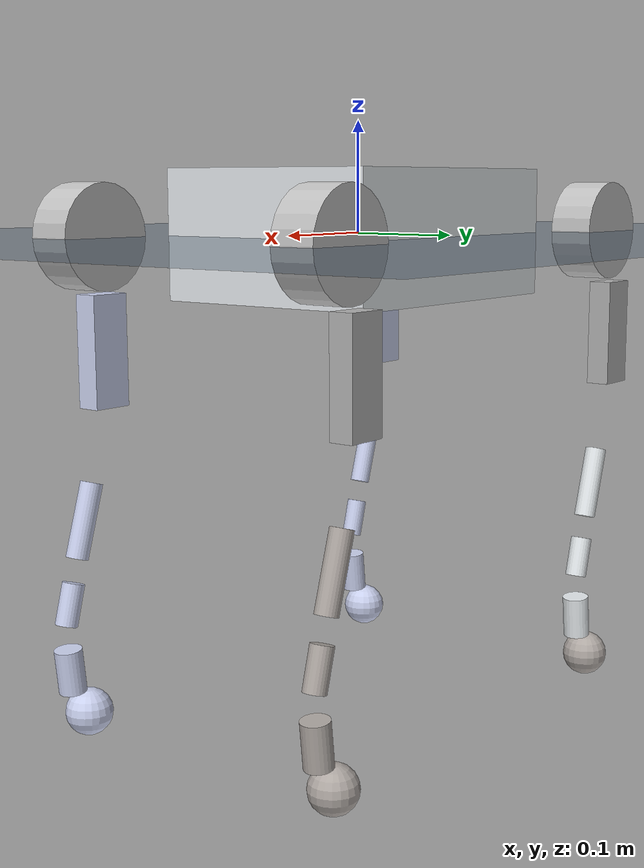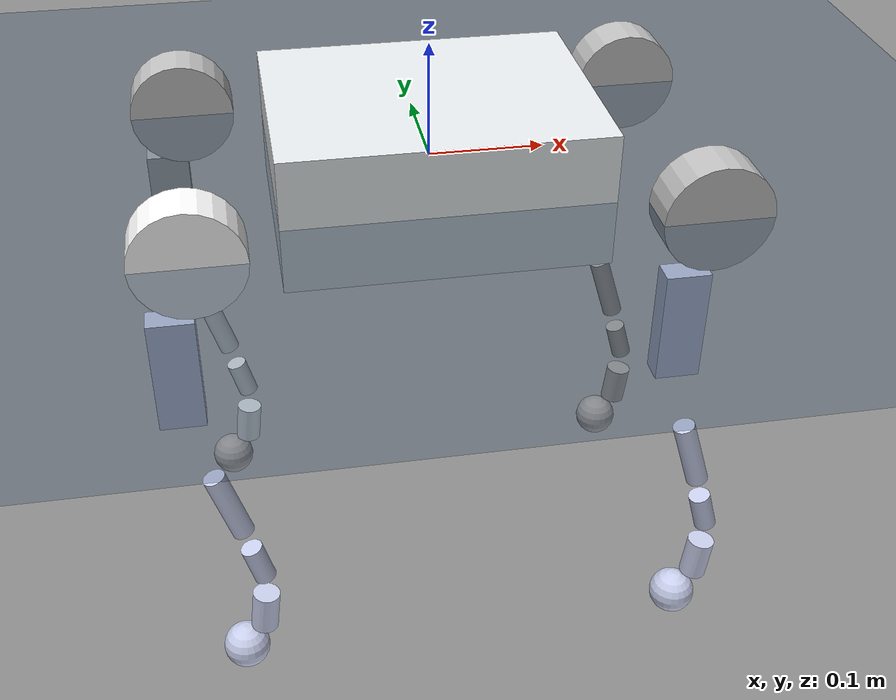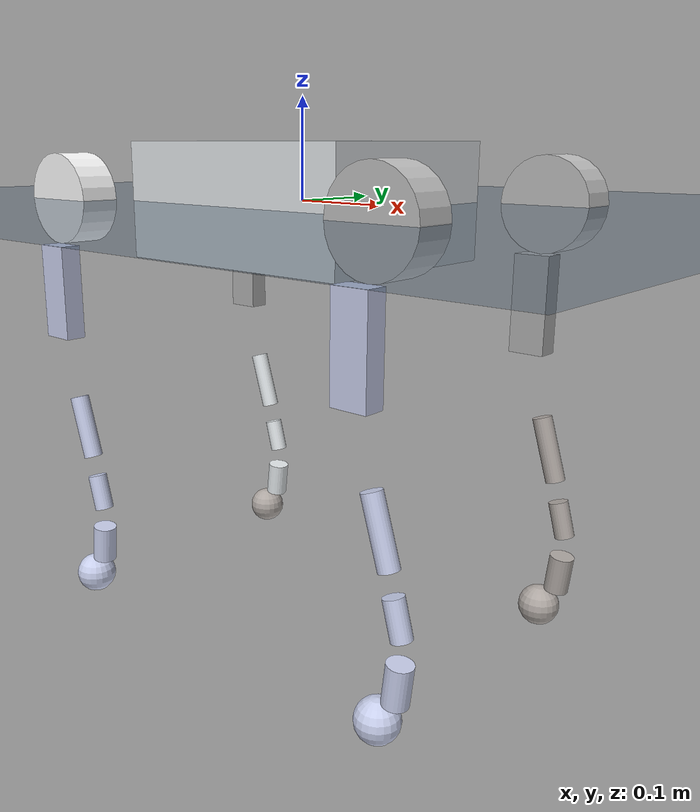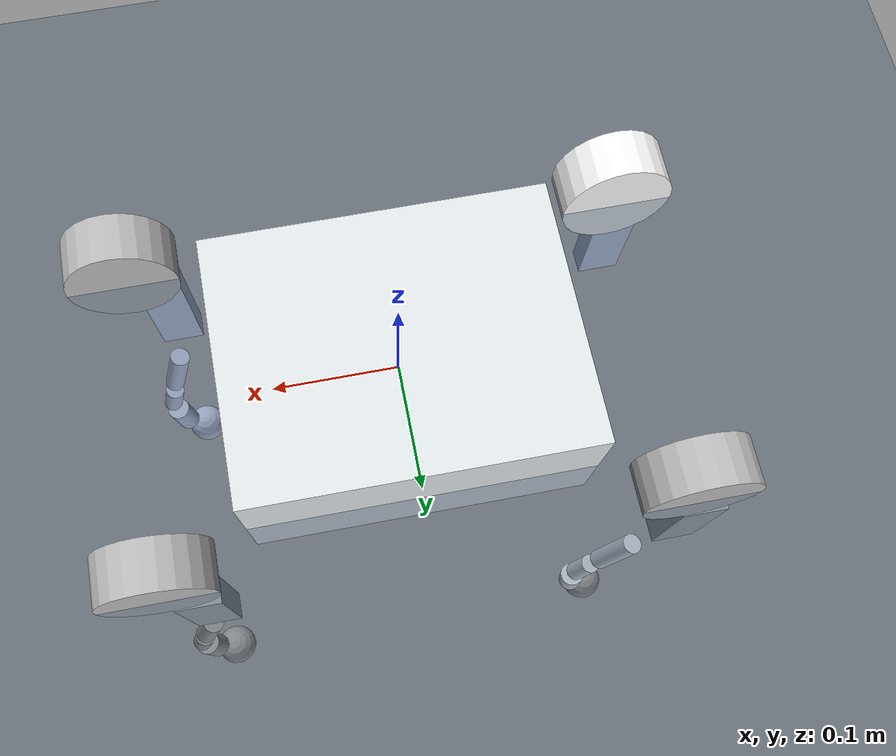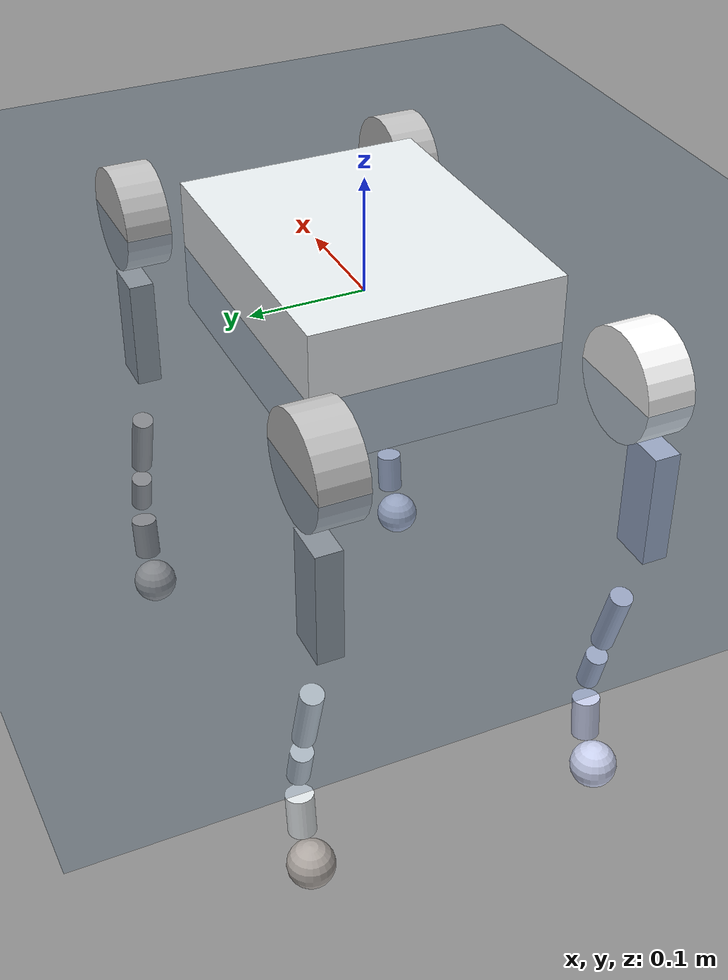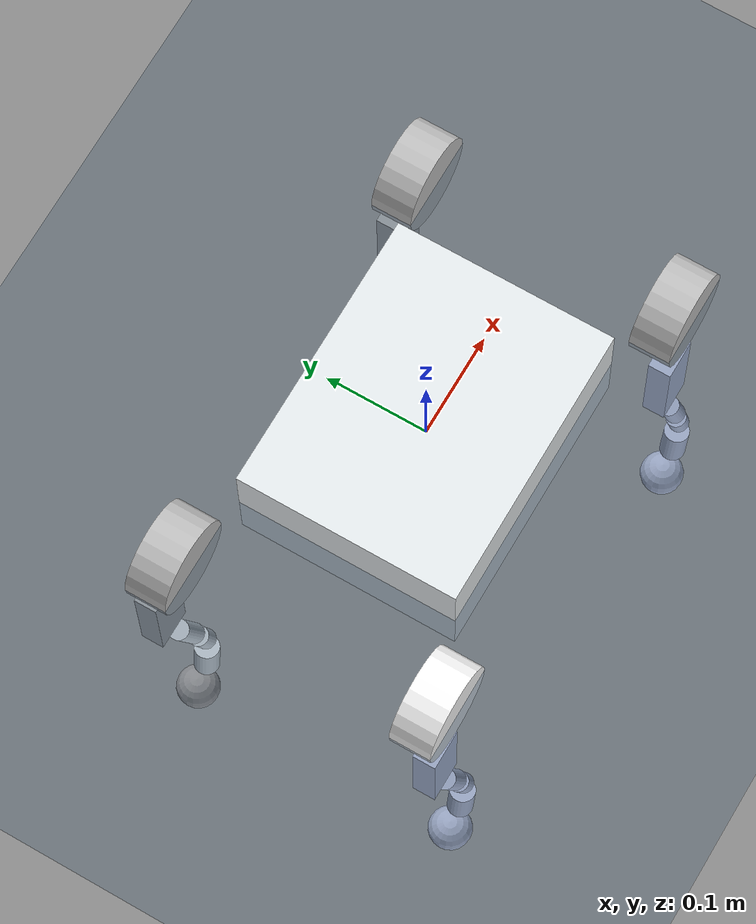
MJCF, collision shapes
<mujoco model="zof_deploy_from_urdf">
  <compiler angle="radian" meshdir="../meshes/"/>

  <visual>
    <headlight diffuse="0.6 0.6 0.6" ambient="0.3 0.3 0.3" specular="0 0 0"/>
  </visual>

  <asset>
    <texture type="2d" name="groundplane" builtin="checker" mark="edge"
             rgb1="0.2 0.3 0.4" rgb2="0.1 0.2 0.3" markrgb="0.8 0.8 0.8" width="300" height="300"/>
    <material name="groundplane" texture="groundplane" texuniform="true" texrepeat="5 5" reflectance="0.2"/>
    <mesh name="base" file="../meshes/base.STL"/>
    <mesh name="FL_hip" file="../meshes/FL_hip.STL"/>
    <mesh name="FL_thigh" file="../meshes/FL_thigh.STL"/>
    <mesh name="FL_calf" file="../meshes/FL_calf.STL"/>
    <mesh name="FL_foot" file="../meshes/FL_foot.STL"/>
    <mesh name="FR_hip" file="../meshes/FR_hip.STL"/>
    <mesh name="FR_thigh" file="../meshes/FR_thigh.STL"/>
    <mesh name="FR_calf" file="../meshes/FR_calf.STL"/>
    <mesh name="FR_foot" file="../meshes/FR_foot.STL"/>
    <mesh name="RL_hip" file="../meshes/RL_hip.STL"/>
    <mesh name="RL_thigh" file="../meshes/RL_thigh.STL"/>
    <mesh name="RL_calf" file="../meshes/RL_calf.STL"/>
    <mesh name="RL_foot" file="../meshes/RL_foot.STL"/>
    <mesh name="RR_hip" file="../meshes/RR_hip.STL"/>
    <mesh name="RR_thigh" file="../meshes/RR_thigh.STL"/>
    <mesh name="RR_calf" file="../meshes/RR_calf.STL"/>
    <mesh name="RR_foot" file="../meshes/RR_foot.STL"/>
  </asset>

  <worldbody>
    <light pos="0 0 3" dir="0 0 -1" directional="true"/>
    <geom name="floor" type="plane" size="0 0 0.05" material="groundplane" friction="0.6 0.02 0.001"/>
    <body name="base">
      <inertial pos="0.00757956 -0.0002 -0.00254703" quat="-0.000168829 0.709518 -8.20306e-06 0.704687" mass="4.87475" diaginertia="0.0616585 0.051515 0.0183903"/>
      <joint name="float_base" type="free" limited="false" actuatorfrclimited="false"/>
      <geom type="mesh" contype="0" conaffinity="0" group="1" density="0" rgba="0.898039 0.917647 0.929412 1" mesh="base"/>
      <geom size="0.136 0.107 0.058" type="box" rgba="0.898039 0.917647 0.929412 1"/>
      <site name="imu" pos="0 0 0" size="0.01"/>
      <body name="FL_hip" pos="0.1403 0.0498 0">
        <inertial pos="0.0595071 0.00087962 -8.074e-05" quat="0.496919 0.496369 0.504125 0.502541" mass="0.644204" diaginertia="0.00317449 0.00285293 0.000438798"/>
        <joint name="FL_hip_joint" pos="0 0 0" axis="1 0 0" range="-1.0036 1.0036" actuatorfrcrange="-23.7 23.7"/>
        <geom type="mesh" contype="0" conaffinity="0" group="1" density="0" rgba="0.752941 0.752941 0.752941 1" mesh="FL_hip"/>
        <geom size="0.046 0.02" pos="0.06676 0.08 0" quat="0.707107 0.707107 0 0" type="cylinder" rgba="0.752941 0.752941 0.752941 1"/>
        <body name="FL_thigh" pos="0.0667563 0.0201539 0">
          <inertial pos="-0.00211808 0.0470524 -0.0217645" quat="0.950167 0.309807 0.0346802 0.000206141" mass="0.958557" diaginertia="0.00590221 0.00493252 0.00188799"/>
          <joint name="FL_thigh_joint" pos="0 0 0" axis="0 1 0" range="-0.56723 4.9306" actuatorfrcrange="-23.7 23.7"/>
          <geom type="mesh" contype="0" conaffinity="0" group="1" density="0" rgba="0.698039 0.698039 0.698039 1" mesh="FL_thigh"/>
          <geom size="0.05 0.011 0.019" pos="-0.019 0.0691 -0.1" quat="0.707107 0 0.707107 0" type="box" rgba="0.698039 0.698039 0.698039 1"/>
          <body name="FL_calf" pos="0 0.0694 -0.22">
            <inertial pos="0.0102562 0 -0.142332" quat="0.706652 -0.0253595 -0.0253595 0.706652" mass="0.185505" diaginertia="0.00353873 0.00348961 7.08641e-05"/>
            <joint name="FL_calf_joint" pos="0 0 0" axis="0 1 0" range="-2.618 -0.69813" actuatorfrcrange="-35.55 35.55"/>
            <geom type="mesh" contype="0" conaffinity="0" group="1" density="0" rgba="0.686275 0.658824 0.639216 1" mesh="FL_calf"/>
            <geom size="0.01 0.034" pos="0.009 0 -0.028" quat="0.988771 0 -0.149438 0" type="cylinder" rgba="0.686275 0.658824 0.639216 1"/>
            <geom size="0.01 0.019" pos="0.029 0 -0.1" quat="0.990901 0 -0.13459 0" type="cylinder" rgba="0.686275 0.658824 0.639216 1"/>
            <geom size="0.0125 0.02" pos="0.031 0 -0.16" quat="0.998488 0 0.0549723 0" type="cylinder" rgba="0.686275 0.658824 0.639216 1"/>
            <geom pos="-0.0053877 0 -0.21902" quat="1 0 0 0" type="mesh" contype="0" conaffinity="0" group="1" density="0" rgba="0.686275 0.658824 0.639216 1" mesh="FL_foot"/>
            <geom size="0.02149" pos="0.0106123 0 -0.20402" rgba="0.686275 0.658824 0.639216 1"/>
          </body>
        </body>
      </body>
      <body name="FR_hip" pos="0.1403 -0.0502 0">
        <inertial pos="0.0595071 0.00087962 8.074e-05" quat="0.504125 0.502541 0.496919 0.496369" mass="0.644204" diaginertia="0.00317449 0.00285293 0.000438798"/>
        <joint name="FR_hip_joint" pos="0 0 0" axis="1 0 0" range="-1.0036 1.0036" actuatorfrcrange="-23.7 23.7"/>
        <geom type="mesh" contype="0" conaffinity="0" group="1" density="0" rgba="0.752941 0.752941 0.752941 1" mesh="FR_hip"/>
        <geom size="0.046 0.02" pos="0.06676 -0.08 0" quat="0.707107 0.707107 0 0" type="cylinder" rgba="0.752941 0.752941 0.752941 1"/>
        <body name="FR_thigh" pos="0.0667563 -0.0201539 0">
          <inertial pos="-0.00211808 -0.0470524 -0.0217645" quat="0.950167 -0.309807 0.0346802 -0.000206141" mass="0.958557" diaginertia="0.00590221 0.00493252 0.00188799"/>
          <joint name="FR_thigh_joint" pos="0 0 0" axis="0 1 0" range="-0.56723 4.9306" actuatorfrcrange="-23.7 23.7"/>
          <geom type="mesh" contype="0" conaffinity="0" group="1" density="0" rgba="0.792157 0.819608 0.933333 1" mesh="FR_thigh"/>
          <geom size="0.05 0.011 0.019" pos="-0.019 -0.0691 -0.1" quat="0.707107 0 0.707107 0" type="box" rgba="0.792157 0.819608 0.933333 1"/>
          <body name="FR_calf" pos="0 -0.0694 -0.22">
            <inertial pos="0.0102562 0 -0.142333" quat="0.706652 -0.0253594 -0.0253594 0.706652" mass="0.185505" diaginertia="0.00353873 0.00348962 7.08642e-05"/>
            <joint name="FR_calf_joint" pos="0 0 0" axis="0 1 0" range="-2.618 -0.69813" actuatorfrcrange="-35.55 35.55"/>
            <geom type="mesh" contype="0" conaffinity="0" group="1" density="0" rgba="0.792157 0.819608 0.933333 1" mesh="FR_calf"/>
            <geom size="0.01 0.034" pos="0.009 0 -0.028" quat="0.988771 0 -0.149438 0" type="cylinder" rgba="0.792157 0.819608 0.933333 1"/>
            <geom size="0.01 0.019" pos="0.029 0 -0.1" quat="0.990901 0 -0.13459 0" type="cylinder" rgba="0.792157 0.819608 0.933333 1"/>
            <geom size="0.0125 0.02" pos="0.031 0 -0.16" quat="0.998488 0 0.0549723 0" type="cylinder" rgba="0.792157 0.819608 0.933333 1"/>
            <geom pos="-0.00538771 0 -0.219021" quat="1 0 0 0" type="mesh" contype="0" conaffinity="0" group="1" density="0" rgba="0.792157 0.819608 0.933333 1" mesh="FR_foot"/>
            <geom size="0.02149" pos="0.0106123 0 -0.204021" rgba="0.792157 0.819608 0.933333 1"/>
          </body>
        </body>
      </body>
      <body name="RL_hip" pos="-0.1403 0.0498 0">
        <inertial pos="-0.0595071 0.00087962 8.074e-05" quat="0.502541 0.504125 0.496369 0.496919" mass="0.644204" diaginertia="0.00317449 0.00285293 0.000438798"/>
        <joint name="RL_hip_joint" pos="0 0 0" axis="1 0 0" range="-1.0036 1.0036" actuatorfrcrange="-23.7 23.7"/>
        <geom type="mesh" contype="0" conaffinity="0" group="1" density="0" rgba="0.752941 0.752941 0.752941 1" mesh="RL_hip"/>
        <geom size="0.046 0.02" pos="-0.06676 0.08 0" quat="0.707107 0.707107 0 0" type="cylinder" rgba="0.752941 0.752941 0.752941 1"/>
        <body name="RL_thigh" pos="-0.0667563 0.0201539 0">
          <inertial pos="-0.00211808 0.0470524 -0.0217645" quat="0.950167 0.309807 0.0346802 0.000206141" mass="0.958557" diaginertia="0.00590221 0.00493252 0.00188799"/>
          <joint name="RL_thigh_joint" pos="0 0 0" axis="0 1 0" range="-0.56723 4.9306" actuatorfrcrange="-23.7 23.7"/>
          <geom type="mesh" contype="0" conaffinity="0" group="1" density="0" rgba="0.698039 0.698039 0.698039 1" mesh="RL_thigh"/>
          <geom size="0.05 0.011 0.019" pos="-0.019 0.0691 -0.1" quat="0.707107 0 0.707107 0" type="box" rgba="0.698039 0.698039 0.698039 1"/>
          <body name="RL_calf" pos="0 0.0694 -0.22">
            <inertial pos="0.0102562 0 -0.142333" quat="0.706652 -0.0253594 -0.0253594 0.706652" mass="0.185505" diaginertia="0.00353873 0.00348962 7.08642e-05"/>
            <joint name="RL_calf_joint" pos="0 0 0" axis="0 1 0" range="-2.618 -0.69813" actuatorfrcrange="-35.55 35.55"/>
            <geom type="mesh" contype="0" conaffinity="0" group="1" density="0" rgba="0.898039 0.917647 0.929412 1" mesh="RL_calf"/>
            <geom size="0.01 0.034" pos="0.009 0 -0.028" quat="0.988771 0 -0.149438 0" type="cylinder" rgba="0.898039 0.917647 0.929412 1"/>
            <geom size="0.01 0.019" pos="0.029 0 -0.1" quat="0.990901 0 -0.13459 0" type="cylinder" rgba="0.898039 0.917647 0.929412 1"/>
            <geom size="0.0125 0.02" pos="0.031 0 -0.16" quat="0.998488 0 0.0549723 0" type="cylinder" rgba="0.898039 0.917647 0.929412 1"/>
            <geom pos="-0.00538771 0 -0.219021" quat="1 0 0 0" type="mesh" contype="0" conaffinity="0" group="1" density="0" rgba="0.686275 0.658824 0.639216 1" mesh="RL_foot"/>
            <geom size="0.02149" pos="0.0106123 0 -0.204021" rgba="0.686275 0.658824 0.639216 1"/>
          </body>
        </body>
      </body>
      <body name="RR_hip" pos="-0.1403 -0.0502 0">
        <inertial pos="-0.0595071 -0.00087962 -8.074e-05" quat="0.496369 0.496919 0.502541 0.504125" mass="0.644204" diaginertia="0.00317449 0.00285293 0.000438798"/>
        <joint name="RR_hip_joint" pos="0 0 0" axis="1 0 0" range="-1.0036 1.0036" actuatorfrcrange="-23.7 23.7"/>
        <geom type="mesh" contype="0" conaffinity="0" group="1" density="0" rgba="1 1 1 1" mesh="RR_hip"/>
        <geom size="0.046 0.02" pos="-0.06676 -0.08 0" quat="0.707107 0.707107 0 0" type="cylinder" rgba="1 1 1 1"/>
        <body name="RR_thigh" pos="-0.0667563 -0.0201539 0">
          <inertial pos="-0.00211808 -0.0470524 -0.0217645" quat="0.950167 -0.309807 0.0346802 -0.000206141" mass="0.958557" diaginertia="0.00590221 0.00493252 0.00188799"/>
          <joint name="RR_thigh_joint" pos="0 0 0" axis="0 1 0" range="-0.56723 4.9306" actuatorfrcrange="-23.7 23.7"/>
          <geom type="mesh" contype="0" conaffinity="0" group="1" density="0" rgba="0.792157 0.819608 0.933333 1" mesh="RR_thigh"/>
          <geom size="0.05 0.011 0.019" pos="-0.019 -0.0691 -0.1" quat="0.707107 0 0.707107 0" type="box" rgba="0.792157 0.819608 0.933333 1"/>
          <body name="RR_calf" pos="0 -0.0694 -0.22">
            <inertial pos="0.0102562 0 -0.142332" quat="0.706652 -0.0253595 -0.0253595 0.706652" mass="0.185505" diaginertia="0.00353873 0.00348961 7.08641e-05"/>
            <joint name="RR_calf_joint" pos="0 0 0" axis="0 1 0" range="-2.618 -0.69813" actuatorfrcrange="-35.55 35.55"/>
            <geom type="mesh" contype="0" conaffinity="0" group="1" density="0" rgba="0.792157 0.819608 0.933333 1" mesh="RR_calf"/>
            <geom size="0.01 0.034" pos="0.009 0 -0.028" quat="0.988771 0 -0.149438 0" type="cylinder" rgba="0.792157 0.819608 0.933333 1"/>
            <geom size="0.01 0.019" pos="0.029 0 -0.1" quat="0.990901 0 -0.13459 0" type="cylinder" rgba="0.792157 0.819608 0.933333 1"/>
            <geom size="0.0125 0.02" pos="0.031 0 -0.16" quat="0.998488 0 0.0549723 0" type="cylinder" rgba="0.792157 0.819608 0.933333 1"/>
            <geom pos="-0.0053877 0 -0.21902" quat="1 0 0 0" type="mesh" contype="0" conaffinity="0" group="1" density="0" rgba="0.79216 0.81961 0.93333 1" mesh="RR_foot"/>
            <geom size="0.02149" pos="0.0106123 0 -0.20402" rgba="0.79216 0.81961 0.93333 1"/>
          </body>
        </body>
      </body>
    </body>
  </worldbody>
  <actuator>
    <motor name="FL_hip_joint" joint="FL_hip_joint" gear="1" ctrllimited="true" ctrlrange="-23.7 23.7"/>
    <motor name="FL_thigh_joint" joint="FL_thigh_joint" gear="1" ctrllimited="true" ctrlrange="-23.7 23.7"/>
    <motor name="FL_calf_joint" joint="FL_calf_joint" gear="1" ctrllimited="true" ctrlrange="-35.55 35.55"/>
    <motor name="FR_hip_joint" joint="FR_hip_joint" gear="1" ctrllimited="true" ctrlrange="-23.7 23.7"/>
    <motor name="FR_thigh_joint" joint="FR_thigh_joint" gear="1" ctrllimited="true" ctrlrange="-23.7 23.7"/>
    <motor name="FR_calf_joint" joint="FR_calf_joint" gear="1" ctrllimited="true" ctrlrange="-35.55 35.55"/>
    <motor name="RL_hip_joint" joint="RL_hip_joint" gear="1" ctrllimited="true" ctrlrange="-23.7 23.7"/>
    <motor name="RL_thigh_joint" joint="RL_thigh_joint" gear="1" ctrllimited="true" ctrlrange="-23.7 23.7"/>
    <motor name="RL_calf_joint" joint="RL_calf_joint" gear="1" ctrllimited="true" ctrlrange="-35.55 35.55"/>
    <motor name="RR_hip_joint" joint="RR_hip_joint" gear="1" ctrllimited="true" ctrlrange="-23.7 23.7"/>
    <motor name="RR_thigh_joint" joint="RR_thigh_joint" gear="1" ctrllimited="true" ctrlrange="-23.7 23.7"/>
    <motor name="RR_calf_joint" joint="RR_calf_joint" gear="1" ctrllimited="true" ctrlrange="-35.55 35.55"/>
  </actuator>

  <sensor>
    <framequat name="imu_quat" objtype="site" objname="imu"/>
    <gyro name="imu_gyro" site="imu"/>
  </sensor>

</mujoco>
